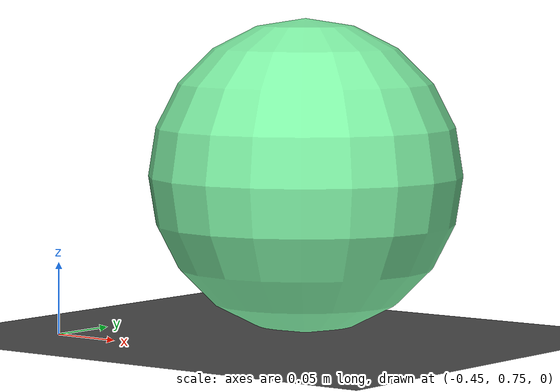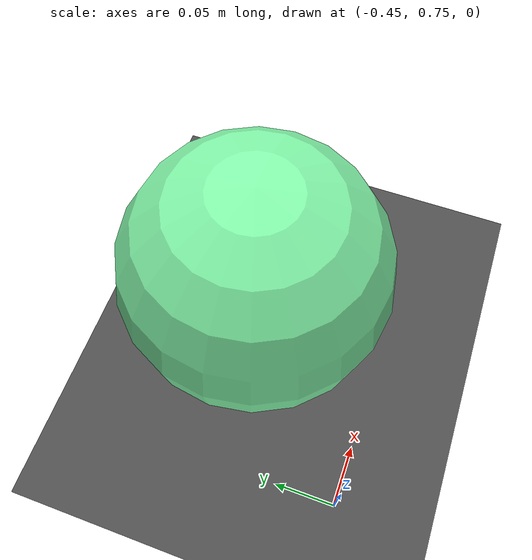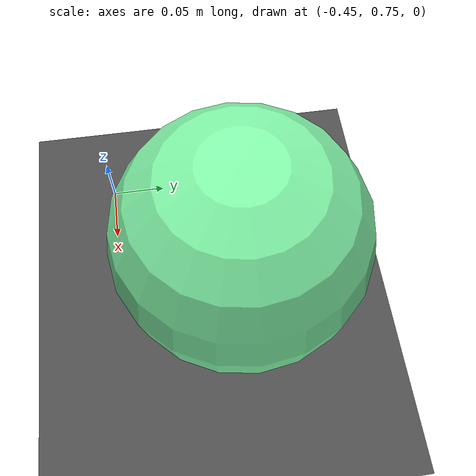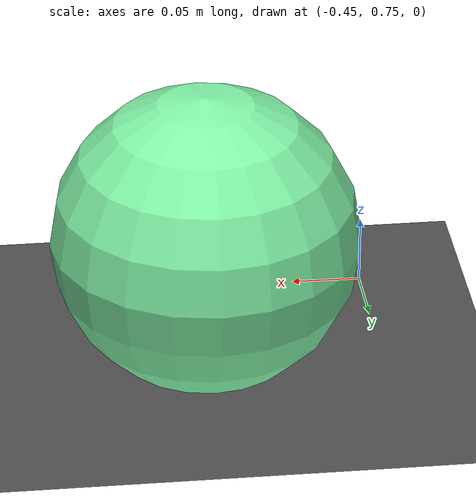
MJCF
<mujoco>
   <asset>
      <texture name="builtin_checker" builtin="checker" type="2d" rgb1="1 1 0" rgb2="0 0 1" width="200" height="200"/>
      <texture name="builtin_gradient" builtin="gradient" rgb1="0 .9 .3" rgb2="1 1 1" width="200" height="200"/>
      <texture name="builtin_flat" builtin="flat" rgb1="1 0 0" rgb2="1 0 0"  width="200" height="200"/>

      <material name="checker_mat" reflectance="0.9" texrepeat="3 3" texture="builtin_checker" texuniform="false" />
      <material name="gradient_mat" reflectance="1" texrepeat="1 1" texture="builtin_gradient" texuniform="true"/>
      <material name="flat_mat" reflectance="1" texrepeat="1 1" texture="builtin_flat" texuniform="true"/>
   </asset>

   <worldbody>
      <light diffuse=".9 .9 .9" pos="0 0 3" dir="0 0 -1"/>
     <geom type="plane" size="1 1 0.1" rgba="0.3 0.3 0.3 1"/>
<body pos="-0.3232989825993473 0.8628091513706456 0.10837340307382544">
<joint type="free"/>
 <geom type="sphere" size="0.10837340307382544 0.10837340307382544 0.10837340307382544" material="gradient_mat" />
</body><camera euler="60 0 180" fovy="60" name="camera_a" pos="0 -1.5 1"></camera>   </worldbody>
</mujoco>
